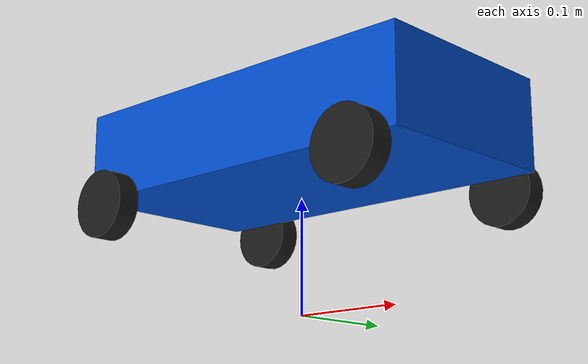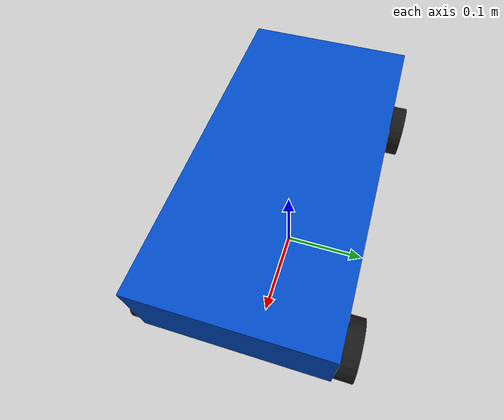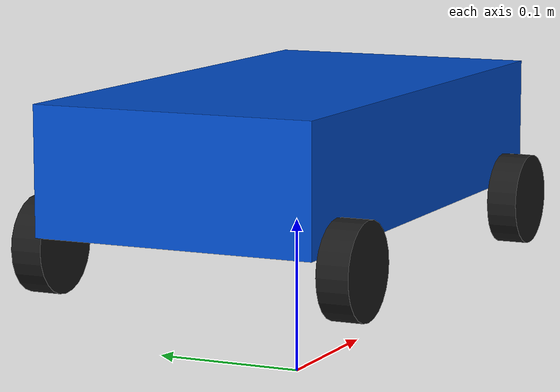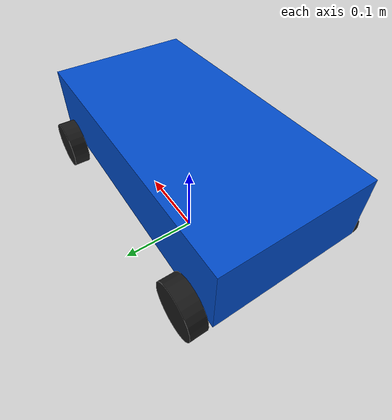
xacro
<?xml version="1.0"?>
<robot xmlns:xacro="http://www.ros.org/wiki/xacro" name="quarter_car">

  <xacro:property name="pi" value="3.14159265358979"/>

  <!-- Fixed world anchor -->
  <link name="base_link"/>

  <!-- Prismatic Z joint drives vertical position from ODE -->
  <joint name="chassis_joint" type="prismatic">
    <parent link="base_link"/>
    <child  link="chassis_link"/>
    <origin xyz="0 0 0.15" rpy="0 0 0"/>
    <axis xyz="0 0 1"/>
    <limit lower="-0.5" upper="0.5" effort="10000" velocity="5"/>
  </joint>

  <!-- Chassis body: 0.35 x 0.18 x 0.08 m, blue -->
  <link name="chassis_link">
    <visual>
      <origin xyz="0 0 0" rpy="0 0 0"/>
      <geometry>
        <box size="0.35 0.18 0.08"/>
      </geometry>
      <material name="blue">
        <color rgba="0.0 0.3 0.8 1.0"/>
      </material>
    </visual>
    <inertial>
      <mass value="3.175"/>
      <inertia ixx="0.01" iyy="0.01" izz="0.01" ixy="0" ixz="0" iyz="0"/>
    </inertial>
  </link>

  <!-- Wheel macro: visual-only cylinders, r=0.03m l=0.02m, black -->
  <xacro:macro name="wheel" params="name x y">
    <joint name="${name}_joint" type="fixed">
      <parent link="chassis_link"/>
      <child  link="${name}_link"/>
      <origin xyz="${x} ${y} -0.05" rpy="${pi/2} 0 0"/>
    </joint>
    <link name="${name}_link">
      <visual>
        <geometry>
          <cylinder radius="0.03" length="0.02"/>
        </geometry>
        <material name="black">
          <color rgba="0.1 0.1 0.1 1.0"/>
        </material>
      </visual>
    </link>
  </xacro:macro>

  <xacro:wheel name="fl_wheel" x=" 0.14" y=" 0.10"/>
  <xacro:wheel name="fr_wheel" x=" 0.14" y="-0.10"/>
  <xacro:wheel name="rl_wheel" x="-0.14" y=" 0.10"/>
  <xacro:wheel name="rr_wheel" x="-0.14" y="-0.10"/>

</robot>
